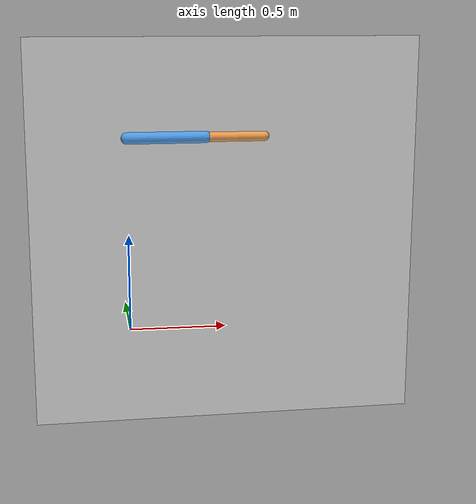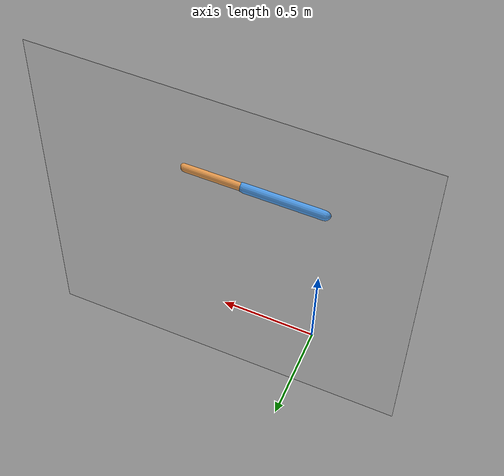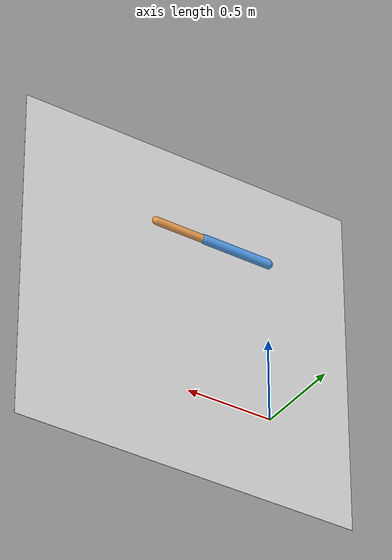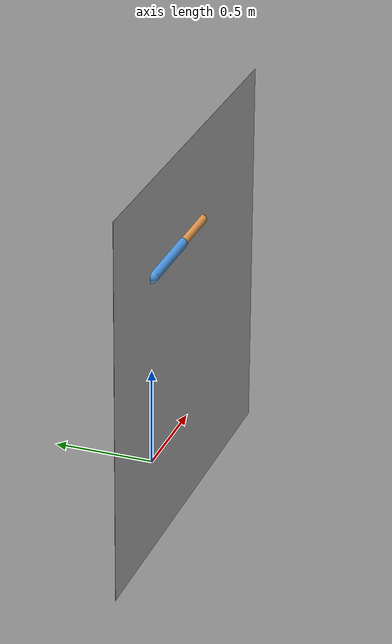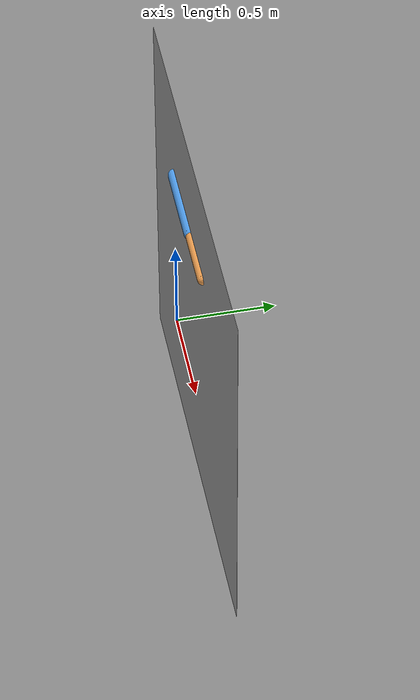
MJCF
<mujoco model="planar_rr_arm_no_gravity">

  <!-- dt=0.001s; gravity enabled: arm operates in vertical plane -->
  <option timestep="0.001" gravity="0 0 0"/>

  <worldbody>
    <!-- Overhead light for rendering -->
    <light pos="0 0 3" dir="0 0 -1"/>
    <!-- Ground plane for visual reference -->
    <geom name="floor" type="plane" size="1 1 0.1" pos="0.5 0 0.5" euler="90 0 0" rgba="0.8 0.8 0.8 1"/>

    <!-- Shoulder body: pivot at (0,0,1), elevated 1m above floor
         (matches pendulum.xml convention: joint at 1m height) -->
    <body name="link1" pos="0 0 1">
      <!-- Joint 1: shoulder hinge, Y-axis rotation = planar motion in X-Z plane
           armature=0.02 for numerical stability (larger than pendulum: heavier arm)
           damping=0.1 small joint friction -->
      <joint name="joint1" type="hinge" axis="0 1 0"
             armature="0.02" damping="0.1"/>
      <!-- Link 1: L1=0.4m capsule extending along +X at rest
           mass=2.0 kg concentrated along rod (heavier upper arm for coupling asymmetry) -->
      <geom name="link1_geom" type="capsule"
            fromto="0 0 0  0.4 0 0"
            size="0.03" mass="2.0" rgba="0.3 0.6 0.9 1"/>

      <!-- Elbow body: pivot at tip of link1 (0.4m along X from shoulder) -->
      <body name="link2" pos="0.4 0 0">
        <!-- Joint 2: elbow hinge, same Y-axis rotation
             armature=0.01; damping=0.05 -->
        <joint name="joint2" type="hinge" axis="0 1 0"
               armature="0.01" damping="0.05"/>
        <!-- Link 2: L2=0.3m capsule extending along +X from elbow
             mass=1.0 kg (lighter forearm — asymmetry amplifies off-diagonal M term) -->
        <geom name="link2_geom" type="capsule"
              fromto="0 0 0  0.3 0 0"
              size="0.025" mass="1.0" rgba="0.9 0.6 0.3 1"/>
        <!-- End-effector site at tip of link2 (for Jacobian in Notebook 4).
             Red sphere marks the end-effector in the viewer. -->
        <site name="ee" pos="0.3 0 0" size="0.02" rgba="1 0 0 1"/>
      </body>
    </body>
  </worldbody>

  <actuator>
    <!-- Motor 1: ctrl[0] = torque in Nm at shoulder joint (no gearing) -->
    <motor name="motor1" joint="joint1" gear="1"/>
    <!-- Motor 2: ctrl[1] = torque in Nm at elbow joint -->
    <motor name="motor2" joint="joint2" gear="1"/>
  </actuator>
</mujoco>
